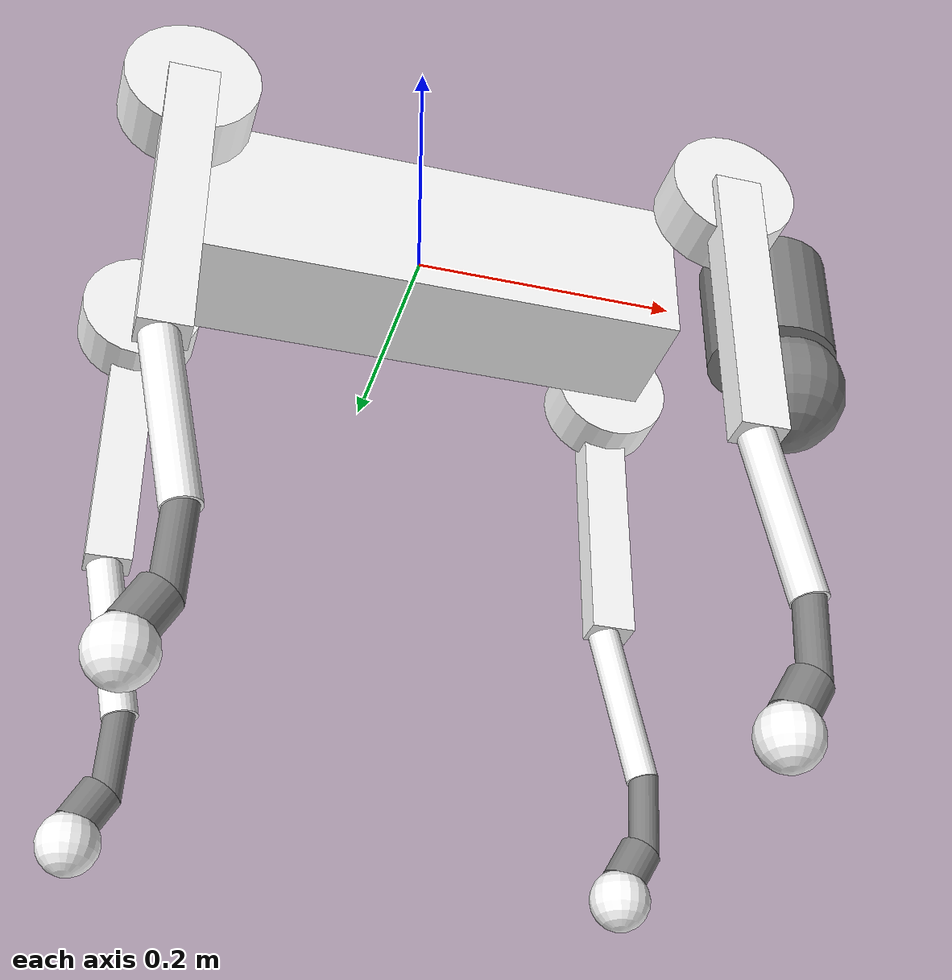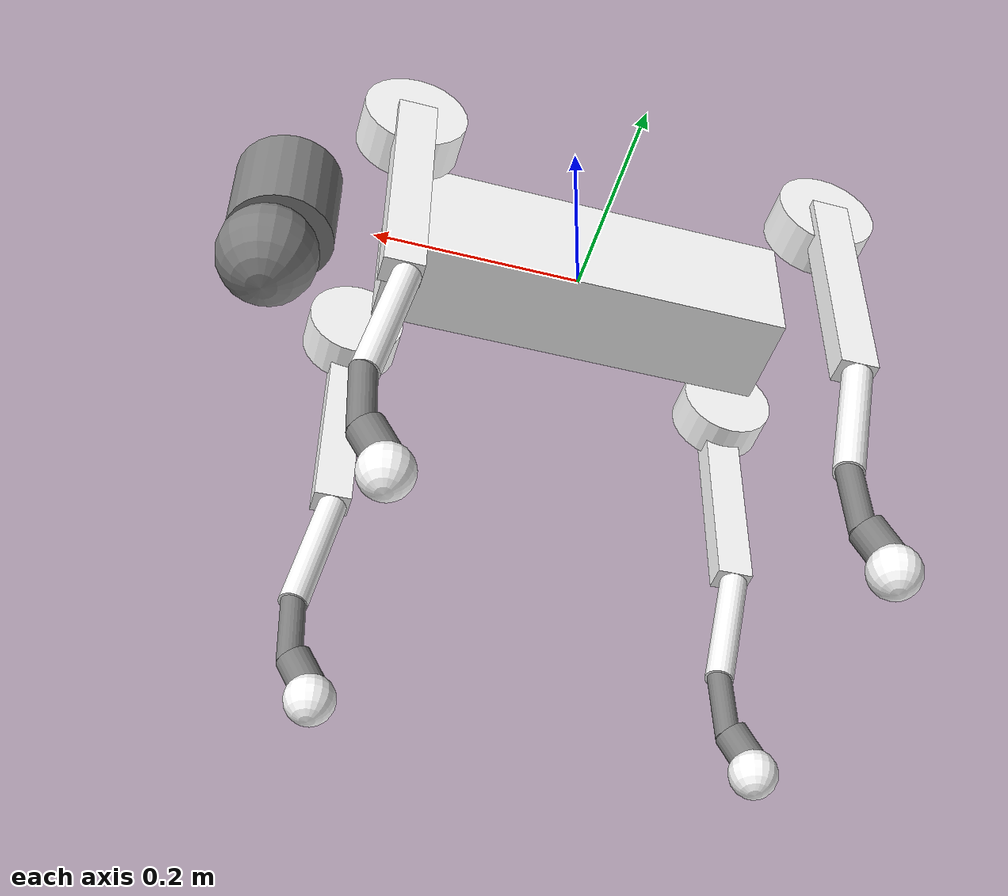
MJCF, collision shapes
<mujoco model="go2_description">
  <compiler angle="radian" meshdir="../meshes/"/>
  <asset>
    <mesh name="base" file="base.stl"/>
    <mesh name="hip" file="hip.stl"/>
    <mesh name="thigh" file="thigh.stl"/>
    <mesh name="calf" file="calf.stl"/>
    <mesh name="foot" file="foot.stl"/>
    <mesh name="thigh_mirror" file="thigh_mirror.stl"/>
    <mesh name="calf_mirror" file="calf_mirror.stl"/>
  </asset>
  <worldbody>
    <geom type="mesh" contype="0" conaffinity="0" group="1" density="0" rgba="1 1 1 1" mesh="base"/>
    <geom size="0.1881 0.04675 0.057" type="box" rgba="1 1 1 1"/>
    <geom size="0.05 0.045" pos="0.285 0 0.01" type="cylinder"/>
    <geom size="0.047" pos="0.293 0 -0.06"/>
    <body name="FL_hip" pos="0.1934 0.0465 0">
      <inertial pos="-0.0054 0.00194 -0.000105" quat="0.497014 0.499245 0.505462 0.498237" mass="0.678" diaginertia="0.00088403 0.000596003 0.000479967"/>
      <joint name="FL_hip_joint" pos="0 0 0" axis="1 0 0" range="-1.0472 1.0472"/>
      <geom type="mesh" contype="0" conaffinity="0" group="1" density="0" rgba="1 1 1 1" mesh="hip"/>
      <geom size="0.046 0.02" pos="0 0.08 0" quat="0.707107 0.707107 0 0" type="cylinder" rgba="1 1 1 1"/>
      <body name="FL_thigh" pos="0 0.0955 0">
        <inertial pos="-0.00374 -0.0223 -0.0327" quat="0.829533 0.0847635 -0.0200632 0.551623" mass="1.152" diaginertia="0.00594973 0.00584149 0.000878787"/>
        <joint name="FL_thigh_joint" pos="0 0 0" axis="0 1 0" range="-1.5708 3.4907"/>
        <geom type="mesh" contype="0" conaffinity="0" group="1" density="0" rgba="1 1 1 1" mesh="thigh"/>
        <geom size="0.1065 0.01225 0.017" pos="0 0 -0.1065" quat="0.707107 0 0.707107 0" type="box" rgba="1 1 1 1"/>
        <body name="FL_calf" pos="0 0 -0.213">
          <inertial pos="0.00629595 -0.000622121 -0.141417" quat="0.710672 0.00154099 -0.00450087 0.703508" mass="0.241352" diaginertia="0.0014901 0.00146356 5.31397e-05"/>
          <joint name="FL_calf_joint" pos="0 0 0" axis="0 1 0" range="-2.7227 -0.83776"/>
          <geom type="mesh" contype="0" conaffinity="0" group="1" density="0" rgba="1 1 1 1" mesh="calf"/>
          <geom size="0.012 0.06" pos="0.008 0 -0.06" quat="0.994493 0 -0.104807 0" type="cylinder" rgba="1 1 1 1"/>
          <geom size="0.011 0.0325" pos="0.02 0 -0.148" quat="0.999688 0 0.0249974 0" type="cylinder"/>
          <geom size="0.0155 0.015" pos="0.00801333 0 -0.18745" quat="0.965093 0 0.261909 0" type="cylinder"/>
          <geom pos="0 0 -0.213" type="mesh" contype="0" conaffinity="0" group="1" density="0" rgba="1 1 1 1" mesh="foot"/>
          <geom size="0.022" pos="-0.002 0 -0.213" rgba="1 1 1 1"/>
        </body>
      </body>
    </body>
    <body name="FR_hip" pos="0.1934 -0.0465 0">
      <inertial pos="-0.0054 -0.00194 -0.000105" quat="0.498237 0.505462 0.499245 0.497014" mass="0.678" diaginertia="0.00088403 0.000596003 0.000479967"/>
      <joint name="FR_hip_joint" pos="0 0 0" axis="1 0 0" range="-1.0472 1.0472"/>
      <geom quat="4.63268e-05 1 0 0" type="mesh" contype="0" conaffinity="0" group="1" density="0" rgba="1 1 1 1" mesh="hip"/>
      <geom size="0.046 0.02" pos="0 -0.08 0" quat="0.707107 0.707107 0 0" type="cylinder" rgba="1 1 1 1"/>
      <body name="FR_thigh" pos="0 -0.0955 0">
        <inertial pos="-0.00374 0.0223 -0.0327" quat="0.551623 -0.0200632 0.0847635 0.829533" mass="1.152" diaginertia="0.00594973 0.00584149 0.000878787"/>
        <joint name="FR_thigh_joint" pos="0 0 0" axis="0 1 0" range="-1.5708 3.4907"/>
        <geom type="mesh" contype="0" conaffinity="0" group="1" density="0" rgba="1 1 1 1" mesh="thigh_mirror"/>
        <geom size="0.1065 0.01225 0.017" pos="0 0 -0.1065" quat="0.707107 0 0.707107 0" type="box" rgba="1 1 1 1"/>
        <body name="FR_calf" pos="0 0 -0.213">
          <inertial pos="0.00629595 0.000622121 -0.141417" quat="0.703508 -0.00450087 0.00154099 0.710672" mass="0.241352" diaginertia="0.0014901 0.00146356 5.31397e-05"/>
          <joint name="FR_calf_joint" pos="0 0 0" axis="0 1 0" range="-2.7227 -0.83776"/>
          <geom type="mesh" contype="0" conaffinity="0" group="1" density="0" rgba="1 1 1 1" mesh="calf_mirror"/>
          <geom size="0.013 0.06" pos="0.01 0 -0.06" quat="0.995004 0 -0.0998334 0" type="cylinder" rgba="1 1 1 1"/>
          <geom size="0.011 0.0325" pos="0.02 0 -0.148" quat="0.999688 0 0.0249974 0" type="cylinder"/>
          <geom size="0.0155 0.015" pos="0.00801333 0 -0.18745" quat="0.965093 0 0.261909 0" type="cylinder"/>
          <geom pos="0 0 -0.213" type="mesh" contype="0" conaffinity="0" group="1" density="0" rgba="1 1 1 1" mesh="foot"/>
          <geom size="0.022" pos="-0.002 0 -0.213" rgba="1 1 1 1"/>
        </body>
      </body>
    </body>
    <body name="RL_hip" pos="-0.1934 0.0465 0">
      <inertial pos="0.0054 0.00194 -0.000105" quat="0.505462 0.498237 0.497014 0.499245" mass="0.678" diaginertia="0.00088403 0.000596003 0.000479967"/>
      <joint name="RL_hip_joint" pos="0 0 0" axis="1 0 0" range="-1.0472 1.0472"/>
      <geom quat="4.63268e-05 0 1 0" type="mesh" contype="0" conaffinity="0" group="1" density="0" rgba="1 1 1 1" mesh="hip"/>
      <geom size="0.046 0.02" pos="0 0.08 0" quat="0.707107 0.707107 0 0" type="cylinder" rgba="1 1 1 1"/>
      <body name="RL_thigh" pos="0 0.0955 0">
        <inertial pos="-0.00374 -0.0223 -0.0327" quat="0.829533 0.0847635 -0.0200632 0.551623" mass="1.152" diaginertia="0.00594973 0.00584149 0.000878787"/>
        <joint name="RL_thigh_joint" pos="0 0 0" axis="0 1 0" range="-0.5236 4.5379"/>
        <geom type="mesh" contype="0" conaffinity="0" group="1" density="0" rgba="1 1 1 1" mesh="thigh"/>
        <geom size="0.1065 0.01225 0.017" pos="0 0 -0.1065" quat="0.707107 0 0.707107 0" type="box" rgba="1 1 1 1"/>
        <body name="RL_calf" pos="0 0 -0.213">
          <inertial pos="0.00629595 -0.000622121 -0.141417" quat="0.710672 0.00154099 -0.00450087 0.703508" mass="0.241352" diaginertia="0.0014901 0.00146356 5.31397e-05"/>
          <joint name="RL_calf_joint" pos="0 0 0" axis="0 1 0" range="-2.7227 -0.83776"/>
          <geom type="mesh" contype="0" conaffinity="0" group="1" density="0" rgba="1 1 1 1" mesh="calf"/>
          <geom size="0.013 0.06" pos="0.01 0 -0.06" quat="0.995004 0 -0.0998334 0" type="cylinder" rgba="1 1 1 1"/>
          <geom size="0.011 0.0325" pos="0.02 0 -0.148" quat="0.999688 0 0.0249974 0" type="cylinder"/>
          <geom size="0.0155 0.015" pos="0.00801333 0 -0.18745" quat="0.965093 0 0.261909 0" type="cylinder"/>
          <geom pos="0 0 -0.213" type="mesh" contype="0" conaffinity="0" group="1" density="0" rgba="1 1 1 1" mesh="foot"/>
          <geom size="0.022" pos="-0.002 0 -0.213" rgba="1 1 1 1"/>
        </body>
      </body>
    </body>
    <body name="RR_hip" pos="-0.1934 -0.0465 0">
      <inertial pos="0.0054 -0.00194 -0.000105" quat="0.499245 0.497014 0.498237 0.505462" mass="0.678" diaginertia="0.00088403 0.000596003 0.000479967"/>
      <joint name="RR_hip_joint" pos="0 0 0" axis="1 0 0" range="-1.0472 1.0472"/>
      <geom quat="2.14617e-09 4.63268e-05 4.63268e-05 -1" type="mesh" contype="0" conaffinity="0" group="1" density="0" rgba="1 1 1 1" mesh="hip"/>
      <geom size="0.046 0.02" pos="0 -0.08 0" quat="0.707107 0.707107 0 0" type="cylinder" rgba="1 1 1 1"/>
      <body name="RR_thigh" pos="0 -0.0955 0">
        <inertial pos="-0.00374 0.0223 -0.0327" quat="0.551623 -0.0200632 0.0847635 0.829533" mass="1.152" diaginertia="0.00594973 0.00584149 0.000878787"/>
        <joint name="RR_thigh_joint" pos="0 0 0" axis="0 1 0" range="-0.5236 4.5379"/>
        <geom type="mesh" contype="0" conaffinity="0" group="1" density="0" rgba="1 1 1 1" mesh="thigh_mirror"/>
        <geom size="0.1065 0.01225 0.017" pos="0 0 -0.1065" quat="0.707107 0 0.707107 0" type="box" rgba="1 1 1 1"/>
        <body name="RR_calf" pos="0 0 -0.213">
          <inertial pos="0.00629595 0.000622121 -0.141417" quat="0.703508 -0.00450087 0.00154099 0.710672" mass="0.241352" diaginertia="0.0014901 0.00146356 5.31397e-05"/>
          <joint name="RR_calf_joint" pos="0 0 0" axis="0 1 0" range="-2.7227 -0.83776"/>
          <geom type="mesh" contype="0" conaffinity="0" group="1" density="0" rgba="1 1 1 1" mesh="calf_mirror"/>
          <geom size="0.013 0.06" pos="0.01 0 -0.06" quat="0.995004 0 -0.0998334 0" type="cylinder" rgba="1 1 1 1"/>
          <geom size="0.011 0.0325" pos="0.02 0 -0.148" quat="0.999688 0 0.0249974 0" type="cylinder"/>
          <geom size="0.0155 0.015" pos="0.00801333 0 -0.18745" quat="0.965093 0 0.261909 0" type="cylinder"/>
          <geom pos="0 0 -0.213" type="mesh" contype="0" conaffinity="0" group="1" density="0" rgba="1 1 1 1" mesh="foot"/>
          <geom size="0.022" pos="-0.002 0 -0.213" rgba="1 1 1 1"/>
        </body>
      </body>
    </body>
  </worldbody>
</mujoco>
